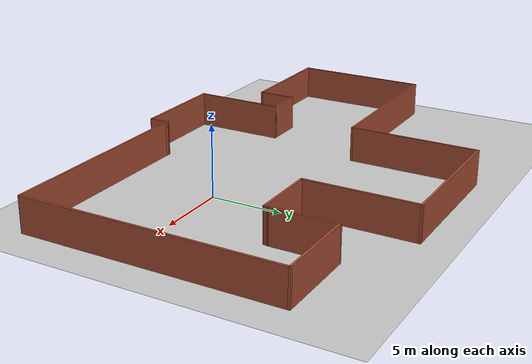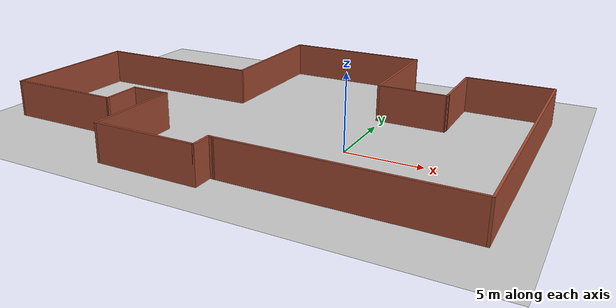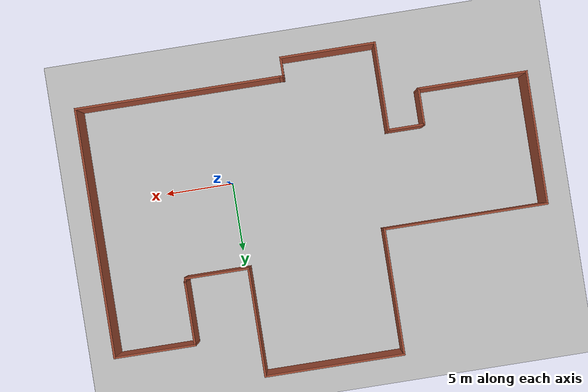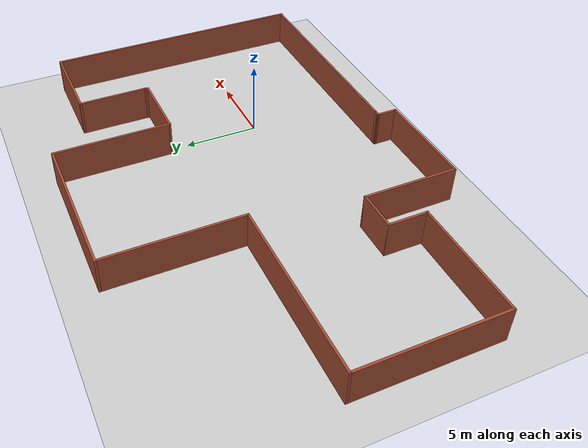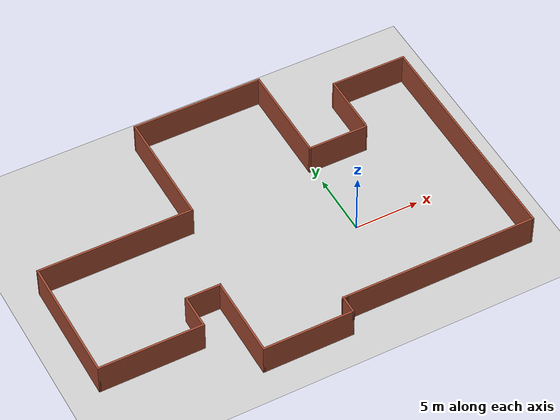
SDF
<sdf version="1.7">
 <world name="default">
  <light name="sun" type="directional">
   <pose>0 0 10 0 -0 0</pose>
   <diffuse>0.8 0.8 0.8 1</diffuse>
   <specular>0.2 0.2 0.2 1</specular>
   <attenuation>
    <range>1000</range>
    <constant>0.9</constant>
    <linear>0.01</linear>
    <quadratic>0.001</quadratic>
   </attenuation>
   <direction>-0.5 0.1 -0.9</direction>
   <spot><inner_angle>0</inner_angle><outer_angle>0</outer_angle><falloff>0</falloff></spot>
  </light>
  <model name="ground_plane">
   <static>1</static>
   <link name="link">
    <collision name="collision">
     <geometry><plane><normal>0 0 1</normal><size>100 100</size></plane></geometry>
     <surface>
      <contact><collide_bitmask>65535</collide_bitmask></contact>
      <friction><ode><mu>100</mu><mu2>50</mu2></ode></friction>
     </surface>
    </collision>
    <visual name="visual">
     <cast_shadows>0</cast_shadows>
     <geometry><plane><normal>0 0 1</normal><size>100 100</size></plane></geometry>
     <material>
      <script><uri>file://media/materials/scripts/gazebo.material</uri><name>Gazebo/Grey</name></script>
     </material>
    </visual>
   </link>
  </model>
  <gravity>0 0 -9.8</gravity>
  <magnetic_field>6e-06 2.3e-05 -4.2e-05</magnetic_field>
  <atmosphere type="adiabatic"/>
  <physics type="ode">
   <max_step_size>0.001</max_step_size>
   <real_time_factor>1</real_time_factor>
   <real_time_update_rate>1000</real_time_update_rate>
  </physics>
  <scene><ambient>0.4 0.4 0.4 1</ambient><background>0.7 0.7 0.7 1</background><shadows>1</shadows></scene>
  <spherical_coordinates>
   <surface_model>EARTH_WGS84</surface_model>
   <latitude_deg>0</latitude_deg>
   <longitude_deg>0</longitude_deg>
   <elevation>0</elevation>
   <heading_deg>0</heading_deg>
  </spherical_coordinates>
  <model name="myworld">
   <pose>-6.04524 2.90865 0 0 -0 0</pose>
   <link name="Wall_1">
    <collision name="Wall_1_Collision">
     <geometry><box><size>15 0.15 2.5</size></box></geometry>
     <pose>0 0 1.25 0 -0 0</pose>
    </collision>
    <visual name="Wall_1_Visual">
     <pose>0 0 1.25 0 -0 0</pose>
     <geometry><box><size>15 0.15 2.5</size></box></geometry>
     <material>
      <script><uri>file://media/materials/scripts/gazebo.material</uri><name>Gazebo/Bricks</name></script>
      <ambient>1 1 1 1</ambient>
     </material>
     <meta><layer>0</layer></meta>
    </visual>
    <pose>8.80081 -9.88415 0 0 -0 0</pose>
   </link>
   <link name="Wall_15">
    <collision name="Wall_15_Collision">
     <geometry><box><size>4.75 0.15 2.5</size></box></geometry>
     <pose>0 0 1.25 0 -0 0</pose>
    </collision>
    <visual name="Wall_15_Visual">
     <pose>0 0 1.25 0 -0 0</pose>
     <geometry><box><size>4.75 0.15 2.5</size></box></geometry>
     <material>
      <script><uri>file://media/materials/scripts/gazebo.material</uri><name>Gazebo/Bricks</name></script>
      <ambient>1 1 1 1</ambient>
     </material>
     <meta><layer>0</layer></meta>
    </visual>
    <pose>8.02419 3.375 0 0 -0 3.14159</pose>
   </link>
   <link name="Wall_16">
    <collision name="Wall_16_Collision">
     <geometry><box><size>8 0.15 2.5</size></box></geometry>
     <pose>0 0 1.25 0 -0 0</pose>
    </collision>
    <visual name="Wall_16_Visual">
     <pose>0 0 1.25 0 -0 0</pose>
     <geometry><box><size>8 0.15 2.5</size></box></geometry>
     <material>
      <script><uri>file://media/materials/scripts/gazebo.material</uri><name>Gazebo/Bricks</name></script>
      <ambient>1 1 1 1</ambient>
     </material>
     <meta><layer>0</layer></meta>
    </visual>
    <pose>5.72419 7.3 0 0 -0 1.5708</pose>
   </link>
   <link name="Wall_17">
    <collision name="Wall_17_Collision">
     <geometry><box><size>10.25 0.15 2.5</size></box></geometry>
     <pose>0 0 1.25 0 -0 0</pose>
    </collision>
    <visual name="Wall_17_Visual">
     <pose>0 0 1.25 0 -0 0</pose>
     <geometry><box><size>10.25 0.15 2.5</size></box></geometry>
     <material>
      <script><uri>file://media/materials/scripts/gazebo.material</uri><name>Gazebo/Bricks</name></script>
      <ambient>1 1 1 1</ambient>
     </material>
     <meta><layer>0</layer></meta>
    </visual>
    <pose>0.674193 11.225 0 0 -0 3.14159</pose>
   </link>
   <link name="Wall_18">
    <collision name="Wall_18_Collision">
     <geometry><box><size>9.25 0.15 2.5</size></box></geometry>
     <pose>0 0 1.25 0 -0 0</pose>
    </collision>
    <visual name="Wall_18_Visual">
     <pose>0 0 1.25 0 -0 0</pose>
     <geometry><box><size>9.25 0.15 2.5</size></box></geometry>
     <material>
      <script><uri>file://media/materials/scripts/gazebo.material</uri><name>Gazebo/Bricks</name></script>
      <ambient>1 1 1 1</ambient>
     </material>
     <meta><layer>0</layer></meta>
    </visual>
    <pose>-4.37581 6.675 0 0 -0 -1.5708</pose>
   </link>
   <link name="Wall_19">
    <collision name="Wall_19_Collision">
     <geometry><box><size>12 0.15 2.5</size></box></geometry>
     <pose>0 0 1.25 0 -0 0</pose>
    </collision>
    <visual name="Wall_19_Visual">
     <pose>0 0 1.25 0 -0 0</pose>
     <geometry><box><size>12 0.15 2.5</size></box></geometry>
     <material>
      <script><uri>file://media/materials/scripts/gazebo.material</uri><name>Gazebo/Bricks</name></script>
      <ambient>1 1 1 1</ambient>
     </material>
     <meta><layer>0</layer></meta>
    </visual>
    <pose>-10.3008 2.125 0 0 -0 3.14159</pose>
   </link>
   <link name="Wall_20">
    <collision name="Wall_20_Collision">
     <geometry><box><size>9.75 0.15 2.5</size></box></geometry>
     <pose>0 0 1.25 0 -0 0</pose>
    </collision>
    <visual name="Wall_20_Visual">
     <pose>0 0 1.25 0 -0 0</pose>
     <geometry><box><size>9.75 0.15 2.5</size></box></geometry>
     <material>
      <script><uri>file://media/materials/scripts/gazebo.material</uri><name>Gazebo/Bricks</name></script>
      <ambient>1 1 1 1</ambient>
     </material>
     <meta><layer>0</layer></meta>
    </visual>
    <pose>-16.2258 -2.675 0 0 -0 -1.5708</pose>
   </link>
   <link name="Wall_21">
    <collision name="Wall_21_Collision">
     <geometry><box><size>8 0.15 2.5</size></box></geometry>
     <pose>0 0 1.25 0 -0 0</pose>
    </collision>
    <visual name="Wall_21_Visual">
     <pose>0 0 1.25 0 -0 0</pose>
     <geometry><box><size>8 0.15 2.5</size></box></geometry>
     <material>
      <script><uri>file://media/materials/scripts/gazebo.material</uri><name>Gazebo/Bricks</name></script>
      <ambient>1 1 1 1</ambient>
     </material>
     <meta><layer>0</layer></meta>
    </visual>
    <pose>-12.3008 -7.475 0 0 -0 0</pose>
   </link>
   <link name="Wall_22">
    <collision name="Wall_22_Collision">
     <geometry><box><size>2.75 0.15 2.5</size></box></geometry>
     <pose>0 0 1.25 0 -0 0</pose>
    </collision>
    <visual name="Wall_22_Visual">
     <pose>0 0 1.25 0 -0 0</pose>
     <geometry><box><size>2.75 0.15 2.5</size></box></geometry>
     <material>
      <script><uri>file://media/materials/scripts/gazebo.material</uri><name>Gazebo/Bricks</name></script>
      <ambient>1 1 1 1</ambient>
     </material>
     <meta><layer>0</layer></meta>
    </visual>
    <pose>-8.37581 -6.175 0 0 -0 1.5708</pose>
   </link>
   <link name="Wall_23">
    <collision name="Wall_23_Collision">
     <geometry><box><size>2.75 0.15 2.5</size></box></geometry>
     <pose>0 0 1.25 0 -0 0</pose>
    </collision>
    <visual name="Wall_23_Visual">
     <pose>0 0 1.25 0 -0 0</pose>
     <geometry><box><size>2.75 0.15 2.5</size></box></geometry>
     <material>
      <script><uri>file://media/materials/scripts/gazebo.material</uri><name>Gazebo/Bricks</name></script>
      <ambient>1 1 1 1</ambient>
     </material>
     <meta><layer>0</layer></meta>
    </visual>
    <pose>-7.07581 -4.875 0 0 -0 0</pose>
   </link>
   <link name="Wall_24">
    <collision name="Wall_24_Collision">
     <geometry><box><size>6.5 0.15 2.5</size></box></geometry>
     <pose>0 0 1.25 0 -0 0</pose>
    </collision>
    <visual name="Wall_24_Visual">
     <pose>0 0 1.25 0 -0 0</pose>
     <geometry><box><size>6.5 0.15 2.5</size></box></geometry>
     <material>
      <script><uri>file://media/materials/scripts/gazebo.material</uri><name>Gazebo/Bricks</name></script>
      <ambient>1 1 1 1</ambient>
     </material>
     <meta><layer>0</layer></meta>
    </visual>
    <pose>-5.77581 -8.05 0 0 -0 -1.5708</pose>
   </link>
   <link name="Wall_25">
    <collision name="Wall_25_Collision">
     <geometry><box><size>7 0.15 2.5</size></box></geometry>
     <pose>0 0 1.25 0 -0 0</pose>
    </collision>
    <visual name="Wall_25_Visual">
     <pose>0 0 1.25 0 -0 0</pose>
     <geometry><box><size>7 0.15 2.5</size></box></geometry>
     <material>
      <script><uri>file://media/materials/scripts/gazebo.material</uri><name>Gazebo/Bricks</name></script>
      <ambient>1 1 1 1</ambient>
     </material>
     <meta><layer>0</layer></meta>
    </visual>
    <pose>-2.35081 -11.225 0 0 -0 0</pose>
   </link>
   <link name="Wall_26">
    <collision name="Wall_26_Collision">
     <geometry><box><size>1.5 0.15 2.5</size></box></geometry>
     <pose>0 0 1.25 0 -0 0</pose>
    </collision>
    <visual name="Wall_26_Visual">
     <pose>0 0 1.25 0 -0 0</pose>
     <geometry><box><size>1.5 0.15 2.5</size></box></geometry>
     <material>
      <script><uri>file://media/materials/scripts/gazebo.material</uri><name>Gazebo/Bricks</name></script>
      <ambient>1 1 1 1</ambient>
     </material>
     <meta><layer>0</layer></meta>
    </visual>
    <pose>1.07419 -10.55 0 0 -0 1.5708</pose>
   </link>
   <link name="Wall_28">
    <collision name="Wall_28_Collision">
     <geometry><box><size>0.396313 0.15 2.5</size></box></geometry>
     <pose>0 0 1.25 0 -0 0</pose>
    </collision>
    <visual name="Wall_28_Visual">
     <pose>0 0 1.25 0 -0 0</pose>
     <geometry><box><size>0.396313 0.15 2.5</size></box></geometry>
     <material>
      <script><uri>file://media/materials/scripts/gazebo.material</uri><name>Gazebo/Bricks</name></script>
      <ambient>1 1 1 1</ambient>
     </material>
     <meta><layer>0</layer></meta>
    </visual>
    <pose>10.35 3.49542 0 0 -0 1.35969</pose>
   </link>
   <link name="Wall_3">
    <collision name="Wall_3_Collision">
     <geometry><box><size>18.25 0.15 2.5</size></box></geometry>
     <pose>0 0 1.25 0 -0 0</pose>
    </collision>
    <visual name="Wall_3_Visual">
     <pose>0 0 1.25 0 -0 0</pose>
     <geometry><box><size>18.25 0.15 2.5</size></box></geometry>
     <material>
      <script><uri>file://media/materials/scripts/gazebo.material</uri><name>Gazebo/Bricks</name></script>
      <ambient>1 1 1 1</ambient>
     </material>
     <meta><layer>0</layer></meta>
    </visual>
    <pose>16.2258 -0.834155 0 0 -0 1.5708</pose>
   </link>
   <link name="Wall_30">
    <collision name="Wall_30_Collision">
     <geometry><box><size>0.451752 0.15 2.5</size></box></geometry>
     <pose>0 0 1.25 0 -0 0</pose>
    </collision>
    <visual name="Wall_30_Visual">
     <pose>0 0 1.25 0 -0 0</pose>
     <geometry><box><size>0.451752 0.15 2.5</size></box></geometry>
     <material>
      <script><uri>file://media/materials/scripts/gazebo.material</uri><name>Gazebo/Bricks</name></script>
      <ambient>1 1 1 1</ambient>
     </material>
     <meta><layer>0</layer></meta>
    </visual>
    <pose>1.225 -9.87958 0 0 -0 -0.030345</pose>
   </link>
   <link name="Wall_4">
    <collision name="Wall_4_Collision">
     <geometry><box><size>6 0.15 2.5</size></box></geometry>
     <pose>0 0 1.25 0 -0 0</pose>
    </collision>
    <visual name="Wall_4_Visual">
     <pose>0 0 1.25 0 -0 0</pose>
     <geometry><box><size>6 0.15 2.5</size></box></geometry>
     <material>
      <script><uri>file://media/materials/scripts/gazebo.material</uri><name>Gazebo/Bricks</name></script>
      <ambient>1 1 1 1</ambient>
     </material>
     <meta><layer>0</layer></meta>
    </visual>
    <pose>13.3008 8.21584 0 0 -0 3.14159</pose>
   </link>
   <link name="Wall_5">
    <collision name="Wall_5_Collision">
     <geometry><box><size>4.75 0.15 2.5</size></box></geometry>
     <pose>0 0 1.25 0 -0 0</pose>
    </collision>
    <visual name="Wall_5_Visual">
     <pose>0 0 1.25 0 -0 0</pose>
     <geometry><box><size>4.75 0.15 2.5</size></box></geometry>
     <material>
      <script><uri>file://media/materials/scripts/gazebo.material</uri><name>Gazebo/Bricks</name></script>
      <ambient>1 1 1 1</ambient>
     </material>
     <meta><layer>0</layer></meta>
    </visual>
    <pose>10.3758 5.91585 0 0 -0 -1.5708</pose>
   </link>
   <static>1</static>
  </model>
 </world>
</sdf>
